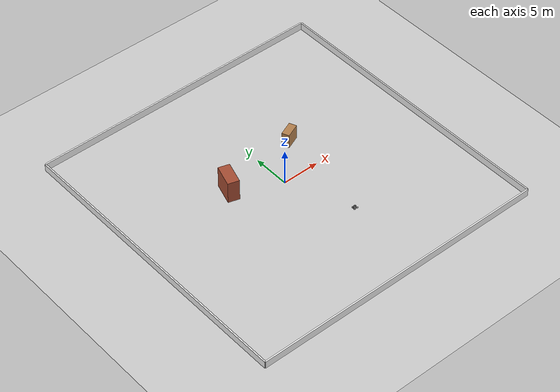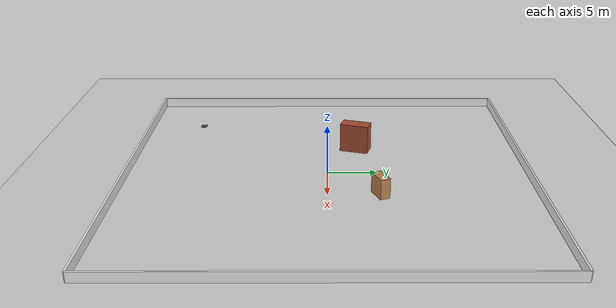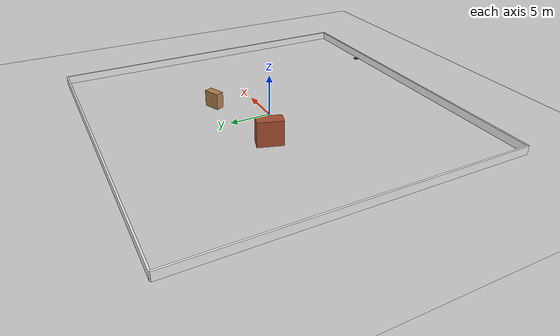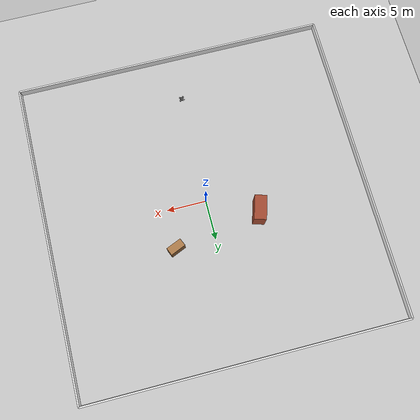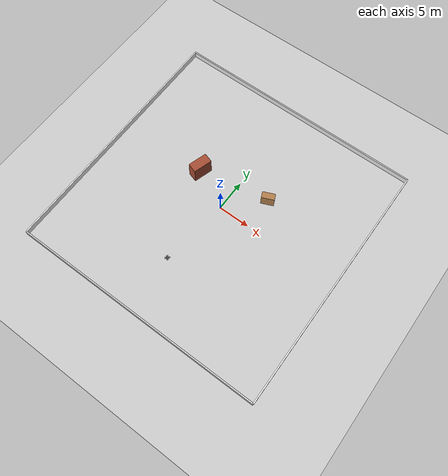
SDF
<sdf version="1.6">
 <world name="tracking_arena">
  <physics type="ode">
   <real_time_update_rate>1000</real_time_update_rate>
   <max_step_size>0.001</max_step_size>
   <real_time_factor>1</real_time_factor>
   <ode>
    <solver>
     <type>quick</type>
     <iters>150</iters>
     <precon_iters>0</precon_iters>
     <sor>1.400000</sor>
     <use_dynamic_moi_rescaling>1</use_dynamic_moi_rescaling>
    </solver>
    <constraints>
     <cfm>0</cfm>
     <erp>0.2</erp>
     <contact_max_correcting_vel>2000</contact_max_correcting_vel>
     <contact_surface_layer>0.01</contact_surface_layer>
    </constraints>
   </ode>
  </physics>
  <scene><ambient>0.4 0.4 0.4 1</ambient><background>0.65 0.75 0.9 1</background><shadows>true</shadows></scene>
  <light name="sun" type="directional">
   <pose>0 0 20 0 -0.4 0.5</pose>
   <diffuse>0.8 0.8 0.8 1</diffuse>
   <specular>0.2 0.2 0.2 1</specular>
   <attenuation>
    <range>1000</range>
    <constant>0.9</constant>
    <linear>0.01</linear>
    <quadratic>0.001</quadratic>
   </attenuation>
   <direction>-0.5 0.2 -0.8</direction>
  </light>
  <model name="ground_plane">
   <static>true</static>
   <link name="link">
    <collision name="collision">
     <geometry><plane><normal>0 0 1</normal><size>100 100</size></plane></geometry>
     <surface><friction><ode><mu>100</mu><mu2>50</mu2></ode></friction></surface>
    </collision>
    <visual name="visual">
     <cast_shadows>false</cast_shadows>
     <geometry><plane><normal>0 0 1</normal><size>100 100</size></plane></geometry>
     <material>
      <script><uri>file://media/materials/scripts/gazebo.material</uri><name>Gazebo/Grey</name></script>
     </material>
    </visual>
   </link>
  </model>
  <model name="wall_north">
   <static>true</static>
   <pose>20 0 0.5 0 0 0</pose>
   <link name="link">
    <collision name="c"><geometry><box><size>0.2 40 1</size></box></geometry></collision>
    <visual name="v">
     <geometry><box><size>0.2 40 1</size></box></geometry>
     <material><script><name>Gazebo/White</name></script></material>
    </visual>
   </link>
  </model>
  <model name="wall_south">
   <static>true</static>
   <pose>-20 0 0.5 0 0 0</pose>
   <link name="link">
    <collision name="c"><geometry><box><size>0.2 40 1</size></box></geometry></collision>
    <visual name="v">
     <geometry><box><size>0.2 40 1</size></box></geometry>
     <material><script><name>Gazebo/White</name></script></material>
    </visual>
   </link>
  </model>
  <model name="wall_east">
   <static>true</static>
   <pose>0 20 0.5 0 0 0</pose>
   <link name="link">
    <collision name="c"><geometry><box><size>40 0.2 1</size></box></geometry></collision>
    <visual name="v">
     <geometry><box><size>40 0.2 1</size></box></geometry>
     <material><script><name>Gazebo/White</name></script></material>
    </visual>
   </link>
  </model>
  <model name="wall_west">
   <static>true</static>
   <pose>0 -20 0.5 0 0 0</pose>
   <link name="link">
    <collision name="c"><geometry><box><size>40 0.2 1</size></box></geometry></collision>
    <visual name="v">
     <geometry><box><size>40 0.2 1</size></box></geometry>
     <material><script><name>Gazebo/White</name></script></material>
    </visual>
   </link>
  </model>
  <model name="obstacle_box_1">
   <static>true</static>
   <pose>5 5 1 0 0 0.4</pose>
   <link name="link">
    <collision name="c"><geometry><box><size>2 1 2</size></box></geometry></collision>
    <visual name="v">
     <geometry><box><size>2 1 2</size></box></geometry>
     <material><script><name>Gazebo/WoodFloor</name></script></material>
    </visual>
   </link>
  </model>
  <model name="obstacle_box_2">
   <static>true</static>
   <pose>-6 3 1.5 0 0 -0.3</pose>
   <link name="link">
    <collision name="c"><geometry><box><size>1.5 3 3</size></box></geometry></collision>
    <visual name="v">
     <geometry><box><size>1.5 3 3</size></box></geometry>
     <material><script><name>Gazebo/Bricks</name></script></material>
    </visual>
   </link>
  </model>
  <model name="drone_model">
   <pose>0 -12 5 0 0 1.5707963</pose>
   <link name="base_link">
    <inertial><mass>1.5</mass><inertia><ixx>0.02</ixx><iyy>0.02</iyy><izz>0.04</izz></inertia></inertial>
    <visual name="body">
     <geometry><box><size>0.35 0.35 0.12</size></box></geometry>
     <material><script><name>Gazebo/DarkGrey</name></script></material>
    </visual>
    <visual name="cam">
     <pose>0.18 0 -0.03 0 0 0</pose>
     <geometry><box><size>0.06 0.06 0.06</size></box></geometry>
     <material><script><name>Gazebo/Black</name></script></material>
    </visual>
    <visual name="r1">
     <pose>0.18  0.18 0.04 0 0 0</pose>
     <geometry><cylinder><radius>0.12</radius><length>0.02</length></cylinder></geometry>
     <material><script><name>Gazebo/Grey</name></script></material>
    </visual>
    <visual name="r2">
     <pose>-0.18  0.18 0.04 0 0 0</pose>
     <geometry><cylinder><radius>0.12</radius><length>0.02</length></cylinder></geometry>
     <material><script><name>Gazebo/Grey</name></script></material>
    </visual>
    <visual name="r3">
     <pose>0.18 -0.18 0.04 0 0 0</pose>
     <geometry><cylinder><radius>0.12</radius><length>0.02</length></cylinder></geometry>
     <material><script><name>Gazebo/Grey</name></script></material>
    </visual>
    <visual name="r4">
     <pose>-0.18 -0.18 0.04 0 0 0</pose>
     <geometry><cylinder><radius>0.12</radius><length>0.02</length></cylinder></geometry>
     <material><script><name>Gazebo/Grey</name></script></material>
    </visual>
    <sensor name="front_camera" type="camera">
     <pose>0.2 0 -0.03 0 0 0</pose>
     <camera>
      <horizontal_fov>1.5708</horizontal_fov>
      <image><width>640</width><height>480</height><format>R8G8B8</format></image>
      <clip><near>0.1</near><far>200</far></clip>
     </camera>
     <always_on>true</always_on>
     <update_rate>30</update_rate>
     <plugin name="camera_controller" filename="libgazebo_ros_camera.so">
      <ros>
       <namespace>/drone</namespace>
       <remapping>image_raw:=camera/image_raw</remapping>
       <remapping>camera_info:=camera/camera_info</remapping>
      </ros>
      <camera_name>front_camera</camera_name>
      <frame_name>drone_camera_link</frame_name>
     </plugin>
    </sensor>
   </link>
  </model>
  <plugin name="gazebo_ros_state" filename="libgazebo_ros_state.so">
   <ros><namespace>/gazebo</namespace></ros>
   <update_rate>30.0</update_rate>
  </plugin>
 </world>
</sdf>
